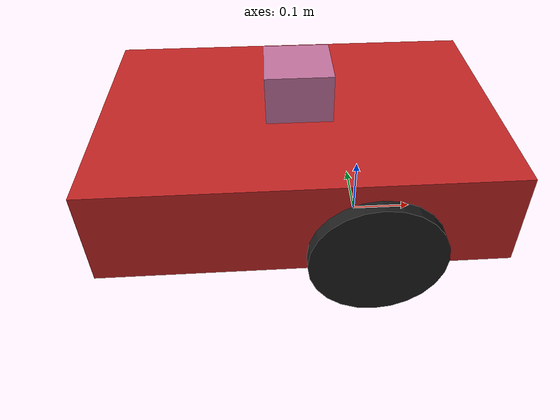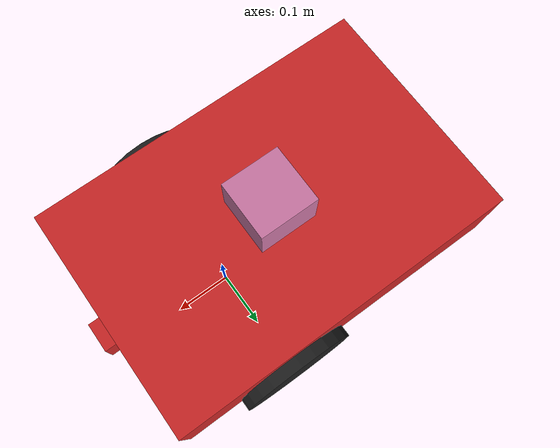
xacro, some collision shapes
<?xml version="1.0"?>
<robot xmlns:xacro="http://www.ros.org/wiki/xacro" name="ros_robot">
    <xacro:include filename="$(find ros_robot_description)/urdf/properties.xacro"/>
    <xacro:include filename="$(find ros_robot_description)/urdf/base.xacro"/>
    <xacro:include filename="$(find ros_robot_description)/urdf/wheel.xacro"/>
    <xacro:include filename="$(find ros_robot_description)/urdf/camera.xacro"/>
    <xacro:include filename="$(find ros_robot_description)/urdf/plidar.xacro"/>

    <xacro:base/>
    <xacro:wheel
        name="left"
        translation="0 ${WHEEL_SEPARATION / 2} 0"
        rotation="0 0 0"
        parent="base_link"/>
    <xacro:wheel
        name="right"
        translation="0 ${-WHEEL_SEPARATION / 2} 0"
        rotation="0 0 0"
        parent="base_link"/>

    <xacro:camera/>
    <xacro:plidar/>
</robot>

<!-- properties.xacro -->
<robot xmlns:xacro="http://www.ros.org/wiki/xacro">

    <!--  กำหนดค่าตัวแปรทั้งหมด  -->
    <xacro:property name="PI" value="3.1415926535897931"></xacro:property>
    <xacro:property name="WHEEL_RADIUS" value="0.1"></xacro:property>

    <xacro:property name="U_MAX" value="10.0"></xacro:property>
    <xacro:property name="V_MAX" value="20.0"></xacro:property>
    <xacro:property name="WHEEL_JOINT_DAMP" value="0.3"></xacro:property>
    <xacro:property name="WHEEL_SEPARATION" value="0.42"></xacro:property>

    <!--Inertia-->
    <xacro:property name="BASE_COM" value="-0.1 0 -0.05"></xacro:property>
    <xacro:property name="BASE_M" value="3"></xacro:property>
    <xacro:property name="BASE_Ixx" value="0.009607873"></xacro:property>
    <xacro:property name="BASE_Ixy" value="0.00018491"></xacro:property>
    <xacro:property name="BASE_Ixz" value="0.000352663"></xacro:property>
    <xacro:property name="BASE_Iyy" value="0.010242986"></xacro:property>
    <xacro:property name="BASE_Iyz" value="0.00027809"></xacro:property>
    <xacro:property name="BASE_Izz" value="0.009654254"></xacro:property>

    <xacro:property name="WHEEL_COM" value="0 0 0"></xacro:property>
    <xacro:property name="WHEEL_M" value="0.21"></xacro:property>
    <xacro:property name="WHEEL_Ixx" value="0.00012052"></xacro:property>
    <xacro:property name="WHEEL_Ixy" value="0.0"></xacro:property>
    <xacro:property name="WHEEL_Ixz" value="0.0"></xacro:property>
    <xacro:property name="WHEEL_Iyy" value="0.0029397"></xacro:property>
    <xacro:property name="WHEEL_Iyz" value="0.0"></xacro:property>
    <xacro:property name="WHEEL_Izz" value="0.00012052"></xacro:property>

    <xacro:property name="camera_link" value="0.05" /> <!-- Size of square 'camera' box -->
</robot>

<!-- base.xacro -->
<robot xmlns:xacro="http://www.ros.org/wiki/xacro" name="robot_base">
    <xacro:include filename="$(find ros_robot_description)/urdf/properties.xacro"/>
    <xacro:macro name="base" params="">
        <!-- base_footlink connect to base_link -->
        <link name="base_footprint"/>
        <joint name="base_footprint_to_base_link" type="fixed">
            <origin xyz="0.0 0.0 0.1" rpy="0.0 0.0 0.0"/>
            <parent link="base_footprint"/>
            <child link="base_link"/>
        </joint>

        <link name="base_link">
            <inertial>
                <origin xyz="${BASE_COM}" rpy="0.0 0.0 0.0"/>
                <mass value="${BASE_M}"/>
                <inertia ixx="${BASE_Ixx}" ixy="${BASE_Ixy}" ixz="${BASE_Ixz}" iyy="${BASE_Iyy}" iyz="${BASE_Iyz}" izz="${BASE_Izz}"/>
            </inertial>
            <visual>
                <origin xyz="-0.1 0.0 0.05" rpy="0.0 0.0 0.0"/>
                <geometry>
                    <box size="0.6 ${WHEEL_SEPARATION - 0.02} 0.15"/>
                </geometry>
            </visual>
            <collision>
                <origin xyz="-0.1 0.0 0.05" rpy="0.0 0.0 0.0"/>
                <geometry>
                    <box size="0.6 ${WHEEL_SEPARATION - 0.02} 0.15"/>
                </geometry>
            </collision>
        </link>

        <!-- base_link connect to caster -->
        <joint name="base_link_to_caster" type="fixed">
            <origin xyz="-0.3 0.0 -0.05" rpy="0.0 0.0 0.0"/>
            <parent link="base_link"/>
            <child link="caster"/>
        </joint>

        <link name="caster">
            <visual>
                <origin xyz="0.0 0.0 0.0" rpy="0.0 0.0 0.0"/>
                <geometry>
                    <sphere radius="0.05"/>
                </geometry>
            </visual>
            <collision>
                <origin xyz="0.0 0.0 0.0" rpy="0.0 0.0 0.0"/>
                <geometry>
                    <sphere radius="0.05"/>
                </geometry>
            </collision>
        </link>
        <gazebo reference="base_link">
            <mu1>0.3</mu1>
            <mu2>0.3</mu2>
            <material>Gazebo/Red</material>
        </gazebo>
        <gazebo reference="caster">
            <mu1>0</mu1>
            <mu2>0</mu2>
            <material>Gazebo/Black</material>
        </gazebo>
    </xacro:macro>
</robot>

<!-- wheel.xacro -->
<robot xmlns:xacro="http://www.ros.org/wiki/xacro" name="wheel">
    <xacro:include filename="$(find ros_robot_description)/urdf/properties.xacro"/>
    <xacro:macro name="wheel" params="name translation rotation parent">

        <gazebo>
            <plugin name="gazebo_ros_control" filename="libgazebo_ros_control.so">
                <robotNamespace>/my_robot</robotNamespace>
            </plugin>
        </gazebo>

        <link name="${name}_wheel">
            <inertial>
                <origin xyz="${WHEEL_COM}" rpy="0.0 0.0 0.0"/>
                <mass value="${WHEEL_M}"/>
                <inertia ixx="${WHEEL_Ixx}" ixy="${WHEEL_Ixy}" ixz="${WHEEL_Ixz}" iyy="${WHEEL_Iyy}" iyz="${WHEEL_Iyz}" izz="${WHEEL_Izz}"/>
            </inertial>
            <visual>
                <origin xyz="0.0 0.0 0.0" rpy="${PI / 2} 0.0 0.0"/>
                <geometry>
                    <cylinder radius="${WHEEL_RADIUS}" length="0.02"/>
                </geometry>
            </visual>
            <collision>
                <origin xyz="0.0 0.0 0.0" rpy="${PI / 2} 0.0 0.0"/>
                <geometry>
                    <cylinder radius="${WHEEL_RADIUS}" length="0.02"/>
                </geometry>
            </collision>
        </link>

        <gazebo reference="${name}_wheel">
            <mu1>1</mu1>
            <mu2>1</mu2>
            <material>Gazebo/Black</material>
        </gazebo>

        <joint name="${name}_wheel_joint" type="continuous">
            <origin xyz="${translation}" rpy="${rotation}"/>
            <parent link="${parent}"/>
            <child link="${name}_wheel"/>
            <axis xyz="0.0 1.0 0.0"/>
            <limit lower="0.0" upper="0.0" effort="${U_MAX}" velocity="${V_MAX}"/>
            <dynamics damping="${WHEEL_JOINT_DAMP}" friction="0.0"/>
        </joint>

        <!-- plug in differential drive -->
        <gazebo>
        <plugin name="differential_drive_controller" filename="libgazebo_ros_diff_drive.so">

            <updateRate>10</updateRate>

            <robotBaseFrame>base_link</robotBaseFrame>
            <leftJoint>left_wheel_joint</leftJoint>
            <rightJoint>right_wheel_joint</rightJoint>

            <wheelSeparation>0.42</wheelSeparation>
            <wheelDiameter>0.1</wheelDiameter>
            <wheelAcceleration>0.5</wheelAcceleration>
            <wheelTorque>10.0</wheelTorque>

            <commandTopic>cmd_vel</commandTopic>
            <odometryTopic>odom</odometryTopic>
            <odometryFrame>odom</odometryFrame>
            <publishTf>1</publishTf>
            <publishWheelJointState>true</publishWheelJointState>
            <legacyMode>false</legacyMode>

        </plugin>

        </gazebo>

    </xacro:macro>
</robot>

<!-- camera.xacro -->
<robot xmlns:xacro="http://www.ros.org/wiki/xacro" name="camera">
    <xacro:include filename="$(find ros_robot_description)/urdf/properties.xacro"/>
    <xacro:include filename="$(find ros_robot_description)/urdf/robot.gazebo"/>
    <xacro:macro name="camera" params="">
        <joint name="camera_joint" type="fixed">
            <axis xyz="0 1 0" />
            <origin xyz="0.2 0.0 0.05" rpy="0 0 0"/>
            <parent link="base_link"/>
            <child link="camera_link"/>
        </joint>

        <!-- Camera -->
        <link name="camera_link">
            <collision>
                <origin xyz="0 0 0" rpy="0 0 0"/>
                <geometry>
                    <box size="${camera_link} ${camera_link} ${camera_link}"/>
                </geometry>
            </collision>

            <visual>
                <origin xyz="0 0 0" rpy="0 0 0"/>
                <geometry>
                    <box size="${camera_link} ${camera_link} ${camera_link}"/>
                </geometry>
                <material name="red"/>
            </visual>

            <inertial>
                <mass value="1e-5" />
                <origin xyz="0 0 0" rpy="0 0 0"/>
                <inertia ixx="1e-6" ixy="0" ixz="0" iyy="1e-6" iyz="0" izz="1e-6" />
            </inertial>
        </link>

        <!-- Plugin Camera ย้ายไปอยู่ในไฟล์ robot.gazebo -->
    </xacro:macro>

</robot>

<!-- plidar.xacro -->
<robot xmlns:xacro="http://www.ros.org/wiki/xacro" name="plidar">
    <xacro:include filename="$(find ros_robot_description)/urdf/properties.xacro"/>
    <xacro:macro name="plidar" params="">
        <joint name="hokuyo_joint" type="fixed">
            <axis xyz="0 1 0" />
            <origin xyz="-0.1 0.0 0.15" rpy="0 0 0"/>
            <parent link="base_link"/>
            <child link="hokuyo_link"/>
        </joint>

        <!-- Hokuyo Laser -->
        <link name="hokuyo_link">
            <collision>
            <origin xyz="0 0 0" rpy="0 0 0"/>
            <geometry>
            <box size="0.1 0.1 0.1"/>
            </geometry>
            </collision>

            <visual>
            <origin xyz="0 0 0" rpy="0 0 0"/>
            <geometry>
                <mesh filename="package://ros_robot_description/meshes/hokuyo.dae"/>
            </geometry>
            </visual>

            <inertial>
            <mass value="1e-5" />
            <origin xyz="0 0 0" rpy="0 0 0"/>
            <inertia ixx="1e-6" ixy="0" ixz="0" iyy="1e-6" iyz="0" izz="1e-6" />
            </inertial>
        </link>

        <!-- hokuyo -->
        <gazebo reference="hokuyo_link">
            <sensor type="gpu_ray" name="head_hokuyo_sensor">
            <pose>0 0 0 0 0 0</pose>
            <visualize>true</visualize>
            <update_rate>40</update_rate>
            <ray>
                <scan>
                <horizontal>
                    <samples>720</samples>
                    <resolution>1</resolution>
                    <min_angle>-1.570796</min_angle>
                    <max_angle>1.570796</max_angle>
                </horizontal>
                </scan>
                <range>
                <min>0.10</min>
                <max>30.0</max>
                <resolution>0.01</resolution>
                </range>
                <noise>
                <type>gaussian</type>
                <mean>0.0</mean>
                <stddev>0.01</stddev>
                </noise>
            </ray>
            <!-- Plugin lidar -->
            <plugin name="gazebo_ros_head_hokuyo_controller" filename="libgazebo_ros_gpu_laser.so">
                <topicName>/my_robot/laser/scan</topicName>
                <frameName>hokuyo_link</frameName>
            </plugin>
            </sensor>
        </gazebo>
    </xacro:macro>

</robot>
